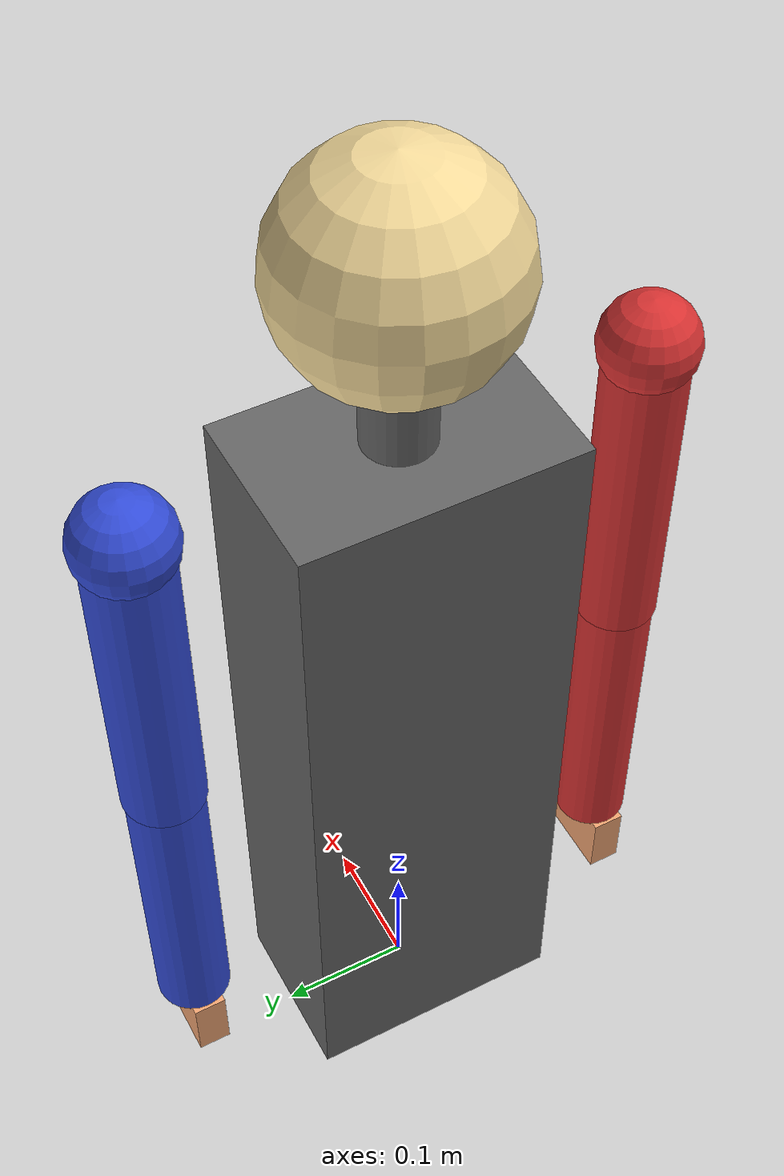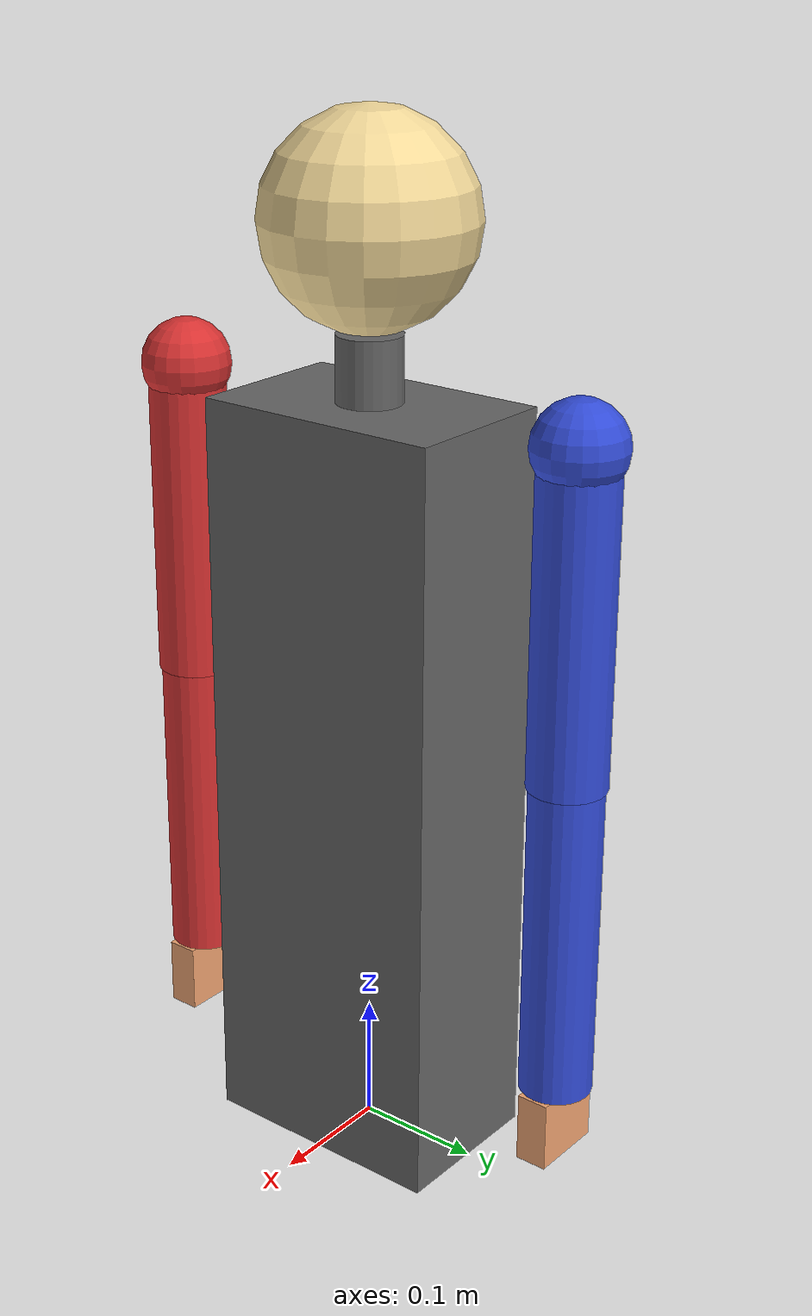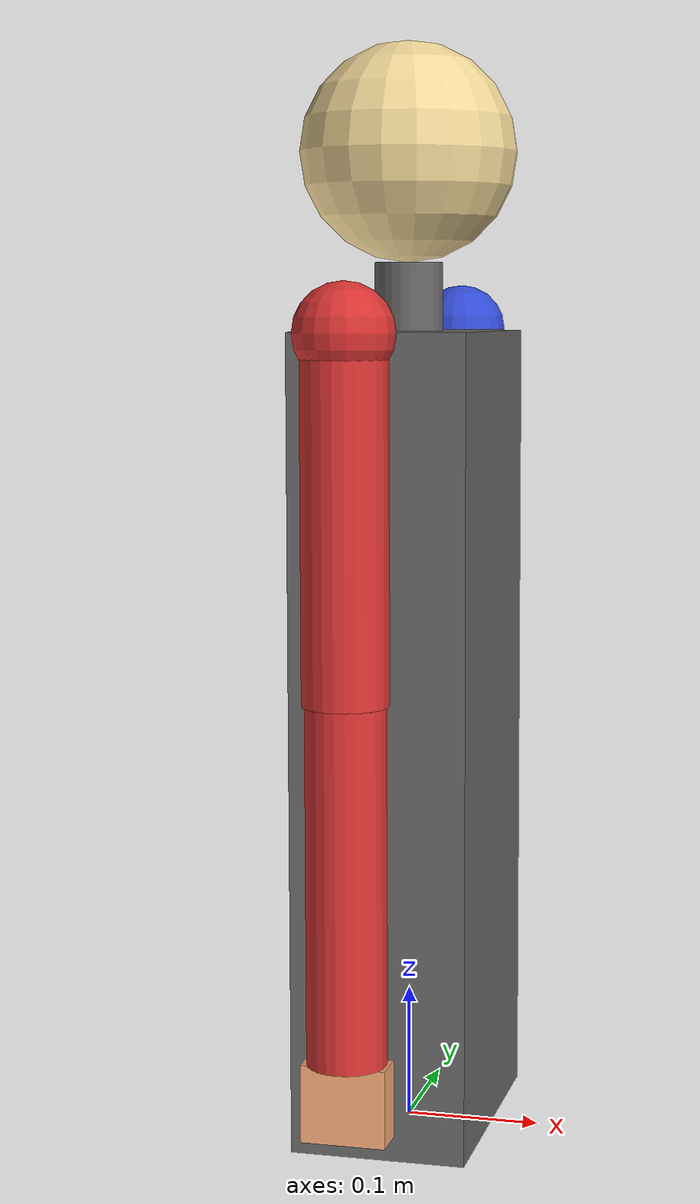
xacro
<?xml version="1.0" encoding="UTF-8"?>
<robot name="ubp" xmlns:xacro="http://www.ros.org/wiki/xacro">

  <!-- =====  파라미터 (실측치로 교체)                          ===== -->
  <xacro:property name="TORSO_DEPTH"    value="0.13"/>  <!-- x: 앞뒤 -->
  <xacro:property name="TORSO_WIDTH"    value="0.20"/>  <!-- y: 좌우 -->
  <xacro:property name="TORSO_HEIGHT"   value="0.60"/>  <!-- z: 수직 -->

  <xacro:property name="SHOULDER_HALF_W" value="0.18"/>  <!-- 토르소 중심 → 어깨 -->
  <xacro:property name="SHOULDER_TOP_Z"  value="0.60"/>  <!-- 어깨 높이 = 토르소 꼭대기 -->

  <xacro:property name="UPPER_ARM_LENGTH" value="0.25"/>
  <xacro:property name="FOREARM_LENGTH"   value="0.25"/>
  <xacro:property name="HAND_LENGTH"      value="0.055"/>

  <xacro:property name="NECK_HEIGHT"     value="0.05"/>
  <xacro:property name="HEAD_RADIUS"     value="0.08"/>

  <!-- 시각화 두께 -->
  <xacro:property name="UPPER_ARM_R" value="0.030"/>
  <xacro:property name="FOREARM_R"   value="0.028"/>
  <xacro:property name="JOINT_BALL_R" value="0.035"/>

  <!-- =====  Materials                                         ===== -->
  <material name="torso_color"><color rgba="0.4 0.4 0.4 1.0"/></material>
  <material name="right_color"><color rgba="0.85 0.20 0.20 1.0"/></material>
  <material name="left_color"><color rgba="0.20 0.30 0.85 1.0"/></material>
  <material name="head_color"><color rgba="0.95 0.85 0.60 1.0"/></material>
  <material name="hand_color"><color rgba="0.95 0.65 0.45 1.0"/></material>

  <!-- =====  Macros                                            ===== -->

  <!-- 단순 cylinder link (upper arm / forearm 같은 길이 있는 링크) -->
  <xacro:macro name="cyl_link" params="name length radius mass color">
    <link name="${name}">
      <visual>
        <origin xyz="0 0 ${-length/2}" rpy="0 0 0"/>
        <geometry><cylinder radius="${radius}" length="${length}"/></geometry>
        <material name="${color}"/>
      </visual>
      <collision>
        <origin xyz="0 0 ${-length/2}" rpy="0 0 0"/>
        <geometry><cylinder radius="${radius}" length="${length}"/></geometry>
      </collision>
      <inertial>
        <origin xyz="0 0 ${-length/2}"/>
        <mass value="${mass}"/>
        <inertia ixx="${mass*length*length/12}" ixy="0" ixz="0"
                 iyy="${mass*length*length/12}" iyz="0"
                 izz="${mass*radius*radius/2}"/>
      </inertial>
    </link>
  </xacro:macro>

  <!-- 회전축이 같은 지점에 모여 있는 mid-link (작은 sphere 시각화) -->
  <xacro:macro name="ball_link" params="name radius color">
    <link name="${name}">
      <visual>
        <origin xyz="0 0 0"/>
        <geometry><sphere radius="${radius}"/></geometry>
        <material name="${color}"/>
      </visual>
      <inertial>
        <mass value="0.03"/>
        <inertia ixx="1e-5" ixy="0" ixz="0" iyy="1e-5" iyz="0" izz="1e-5"/>
      </inertial>
    </link>
  </xacro:macro>

  <!-- 한쪽 팔 전체 (side는 'r' 또는 'l', y_sign은 +1 또는 -1, roll_sign은 +1 또는 -1) -->
  <!-- Paper convention (Yi 2012 / DARwIn-OP):
       +pitch = forward / +roll = outward / +elbow = flexion.
       Right arm: roll axis = -X; Left arm: roll axis = +X (양팔 반대). -->
  <xacro:macro name="arm" params="side y_sign roll_sign color">
    <!-- shoulder_pitch 어깨 위치 -->
    <joint name="${side}_shoulder_pitch_joint" type="revolute">
      <parent link="base_link"/>
      <child link="${side}_shoulder_pr_link"/>
      <origin xyz="0 ${y_sign*SHOULDER_HALF_W} ${SHOULDER_TOP_Z}" rpy="0 0 0"/>
      <axis xyz="0 -1 0"/>
      <limit lower="-3.14" upper="3.14" effort="6.0" velocity="6.0"/>
      <dynamics damping="0.1" friction="0.05"/>
    </joint>
    <xacro:ball_link name="${side}_shoulder_pr_link" radius="${JOINT_BALL_R}" color="${color}"/>

    <joint name="${side}_shoulder_roll_joint" type="revolute">
      <parent link="${side}_shoulder_pr_link"/>
      <child link="${side}_shoulder_ry_link"/>
      <origin xyz="0 0 0" rpy="0 0 0"/>
      <axis xyz="${roll_sign} 0 0"/>
      <limit lower="-3.14" upper="3.14" effort="6.0" velocity="6.0"/>
      <dynamics damping="0.1" friction="0.05"/>
    </joint>
    <link name="${side}_shoulder_ry_link">
      <inertial><mass value="0.03"/>
        <inertia ixx="1e-5" ixy="0" ixz="0" iyy="1e-5" iyz="0" izz="1e-5"/></inertial>
    </link>

    <joint name="${side}_shoulder_yaw_joint" type="revolute">
      <parent link="${side}_shoulder_ry_link"/>
      <child link="${side}_upper_arm_link"/>
      <origin xyz="0 0 0" rpy="0 0 0"/>
      <axis xyz="0 0 1"/>
      <limit lower="-3.14" upper="3.14" effort="6.0" velocity="6.0"/>
      <dynamics damping="0.1" friction="0.05"/>
    </joint>
    <xacro:cyl_link name="${side}_upper_arm_link" length="${UPPER_ARM_LENGTH}"
                    radius="${UPPER_ARM_R}" mass="0.20" color="${color}"/>

    <joint name="${side}_elbow_joint" type="revolute">
      <parent link="${side}_upper_arm_link"/>
      <child link="${side}_elbow_link"/>
      <origin xyz="0 0 ${-UPPER_ARM_LENGTH}" rpy="0 0 0"/>
      <axis xyz="0 1 0"/>
      <limit lower="0.0" upper="2.79" effort="6.0" velocity="6.0"/>
      <dynamics damping="0.1" friction="0.05"/>
    </joint>
    <xacro:ball_link name="${side}_elbow_link" radius="${FOREARM_R}" color="${color}"/>

    <joint name="${side}_wrist_yaw_joint" type="revolute">
      <parent link="${side}_elbow_link"/>
      <child link="${side}_forearm_link"/>
      <origin xyz="0 0 0" rpy="0 0 0"/>
      <axis xyz="0 0 1"/>
      <limit lower="-3.14" upper="3.14" effort="3.0" velocity="6.0"/>
      <dynamics damping="0.05" friction="0.02"/>
    </joint>
    <xacro:cyl_link name="${side}_forearm_link" length="${FOREARM_LENGTH}"
                    radius="${FOREARM_R}" mass="0.15" color="${color}"/>

    <joint name="${side}_wrist_pitch_joint" type="revolute">
      <parent link="${side}_forearm_link"/>
      <child link="${side}_hand_link"/>
      <origin xyz="0 0 ${-FOREARM_LENGTH}" rpy="0 0 0"/>
      <axis xyz="0 1 0"/>
      <limit lower="-1.57" upper="1.57" effort="3.0" velocity="6.0"/>
      <dynamics damping="0.05" friction="0.02"/>
    </joint>
    <link name="${side}_hand_link">
      <visual>
        <origin xyz="0 0 ${-HAND_LENGTH/2}" rpy="0 0 0"/>
        <geometry><box size="0.06 0.025 ${HAND_LENGTH}"/></geometry>
        <material name="hand_color"/>
      </visual>
      <collision>
        <origin xyz="0 0 ${-HAND_LENGTH/2}" rpy="0 0 0"/>
        <geometry><box size="0.06 0.025 ${HAND_LENGTH}"/></geometry>
      </collision>
      <inertial>
        <origin xyz="0 0 ${-HAND_LENGTH/2}"/>
        <mass value="0.10"/>
        <inertia ixx="1e-4" ixy="0" ixz="0" iyy="1e-4" iyz="0" izz="1e-4"/>
      </inertial>
    </link>
  </xacro:macro>

  <!-- =====  Robot                                             ===== -->

  <!-- 토르소 = base_link (고정, 회전 없음) -->
  <link name="base_link">
    <visual>
      <origin xyz="0 0 ${TORSO_HEIGHT/2}" rpy="0 0 0"/>
      <geometry><box size="${TORSO_DEPTH} ${TORSO_WIDTH} ${TORSO_HEIGHT}"/></geometry>
      <material name="torso_color"/>
    </visual>
    <collision>
      <origin xyz="0 0 ${TORSO_HEIGHT/2}" rpy="0 0 0"/>
      <geometry><box size="${TORSO_DEPTH} ${TORSO_WIDTH} ${TORSO_HEIGHT}"/></geometry>
    </collision>
    <inertial>
      <origin xyz="0 0 ${TORSO_HEIGHT/2}"/>
      <mass value="3.0"/>
      <inertia ixx="0.05" ixy="0" ixz="0" iyy="0.05" iyz="0" izz="0.05"/>
    </inertial>
  </link>

  <!-- 머리: 2XL430 액추에이터 (neck_yaw + head_pitch 같은 모터 1개) -->
  <joint name="neck_yaw_joint" type="revolute">
    <parent link="base_link"/>
    <child link="neck_link"/>
    <origin xyz="0 0 ${TORSO_HEIGHT}" rpy="0 0 0"/>
    <axis xyz="0 0 1"/>
    <limit lower="-1.57" upper="1.57" effort="6.0" velocity="6.0"/>
    <dynamics damping="0.1" friction="0.05"/>
  </joint>
  <link name="neck_link">
    <visual>
      <origin xyz="0 0 ${NECK_HEIGHT/2}"/>
      <geometry><cylinder radius="0.025" length="${NECK_HEIGHT}"/></geometry>
      <material name="torso_color"/>
    </visual>
    <inertial><mass value="0.05"/>
      <inertia ixx="1e-4" ixy="0" ixz="0" iyy="1e-4" iyz="0" izz="1e-4"/></inertial>
  </link>

  <joint name="head_pitch_joint" type="revolute">
    <parent link="neck_link"/>
    <child link="head_link"/>
    <origin xyz="0 0 ${NECK_HEIGHT}" rpy="0 0 0"/>
    <axis xyz="0 -1 0"/>
    <limit lower="-1.0" upper="1.0" effort="6.0" velocity="6.0"/>
    <dynamics damping="0.1" friction="0.05"/>
  </joint>
  <link name="head_link">
    <visual>
      <origin xyz="0 0 ${HEAD_RADIUS}"/>
      <geometry><sphere radius="${HEAD_RADIUS}"/></geometry>
      <material name="head_color"/>
    </visual>
    <collision>
      <origin xyz="0 0 ${HEAD_RADIUS}"/>
      <geometry><sphere radius="${HEAD_RADIUS}"/></geometry>
    </collision>
    <inertial>
      <origin xyz="0 0 ${HEAD_RADIUS}"/>
      <mass value="0.3"/>
      <inertia ixx="0.001" ixy="0" ixz="0" iyy="0.001" iyz="0" izz="0.001"/>
    </inertial>
  </link>

  <!-- 양팔 (대칭 macro).
       roll_sign: 우/좌 어깨 abduction이 같은 +각도일 때 서로 반대 방향이 되도록 부호 분리. -->
  <xacro:arm side="r" y_sign="-1" roll_sign="-1" color="right_color"/>
  <xacro:arm side="l" y_sign="+1" roll_sign="+1" color="left_color"/>

</robot>
